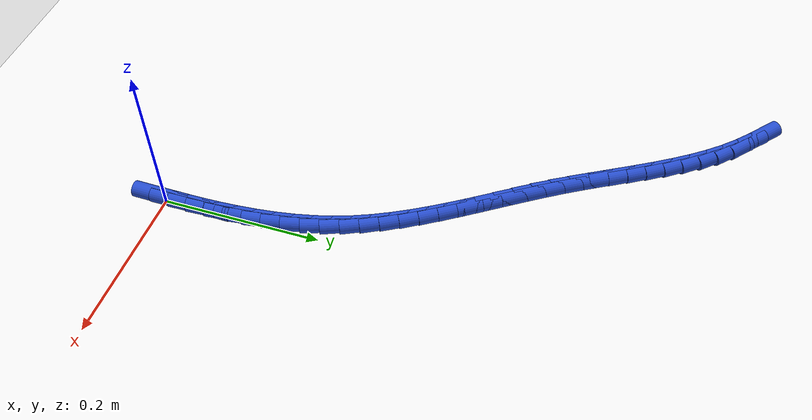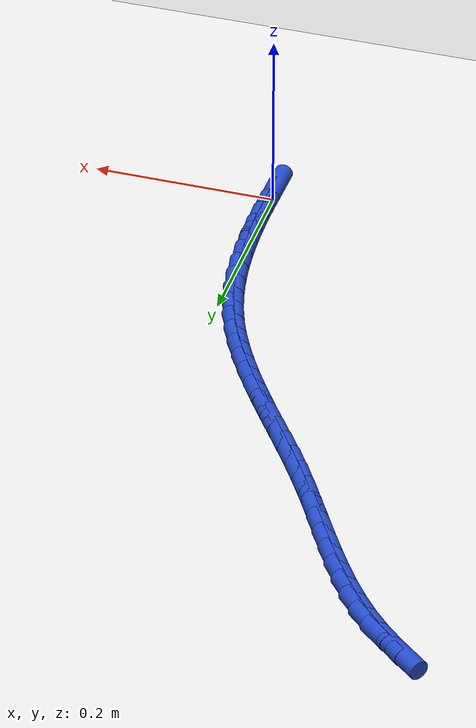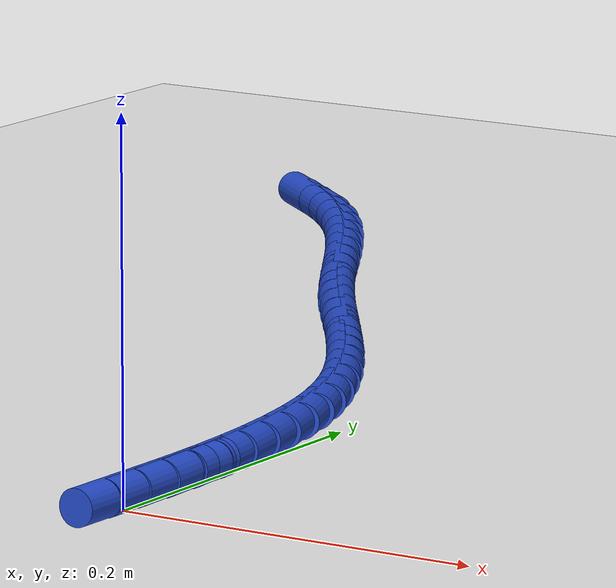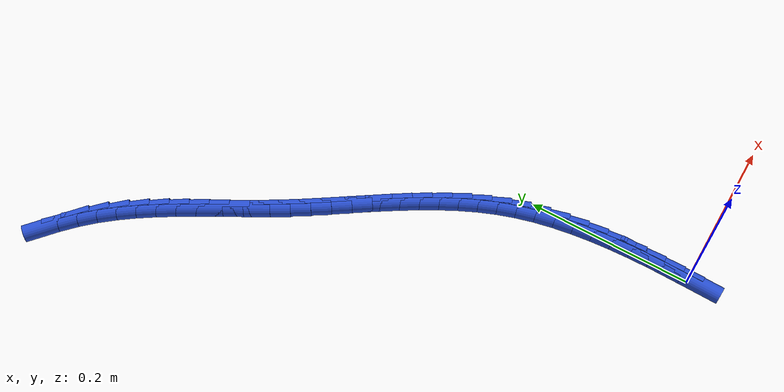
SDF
<sdf version="1.6">
 <world name="default">
  <model name="ground_plane">
   <static>1</static>
   <link name="link">
    <collision name="collision">
     <geometry><plane><normal>0 0 1</normal><size>100 100</size></plane></geometry>
     <surface><friction><ode><mu>100</mu><mu2>50</mu2></ode></friction></surface>
    </collision>
    <visual name="visual">
     <cast_shadows>0</cast_shadows>
     <geometry><plane><normal>0 0 1</normal><size>100 100</size></plane></geometry>
     <material>
      <script><uri>file://media/materials/scripts/gazebo.material</uri><name>Gazebo/WhiteGlow</name></script>
     </material>
    </visual>
   </link>
  </model>
  <model name="line">
   <link name="link_0">
    <pose>-5.637851296924623e-18 7.632783294297951e-17 0.01 0 1.57 1.551759685563351</pose>
    <collision name="collision">
     <geometry><cylinder><radius>0.01</radius><length>0.08</length></cylinder></geometry>
    </collision>
    <visual name="visual">
     <material>
      <script><name>Gazebo/Blue</name><uri>file://media/materials/scripts/gazebo.material</uri></script>
     </material>
     <geometry><cylinder><radius>0.01</radius><length>0.08</length></cylinder></geometry>
    </visual>
   </link>
   <link name="link_1">
    <pose>0.0004580631078288707 0.024059274315162388 0.01 0 1.57 1.57023816781488</pose>
    <collision name="collision">
     <geometry><cylinder><radius>0.01</radius><length>0.08</length></cylinder></geometry>
    </collision>
    <visual name="visual">
     <material>
      <script><name>Gazebo/Blue</name><uri>file://media/materials/scripts/gazebo.material</uri></script>
     </material>
     <geometry><cylinder><radius>0.01</radius><length>0.08</length></cylinder></geometry>
    </visual>
   </link>
   <link name="link_2">
    <pose>0.0004715197326204527 0.04816821796012009 0.01 0 1.57 -1.5480966663146645</pose>
    <collision name="collision">
     <geometry><cylinder><radius>0.01</radius><length>0.08</length></cylinder></geometry>
    </collision>
    <visual name="visual">
     <material>
      <script><name>Gazebo/Blue</name><uri>file://media/materials/scripts/gazebo.material</uri></script>
     </material>
     <geometry><cylinder><radius>0.01</radius><length>0.08</length></cylinder></geometry>
    </visual>
   </link>
   <link name="link_3">
    <pose>-7.52854100205284e-05 0.07225277295274624 0.01 0 1.57 -1.5198641492664755</pose>
    <collision name="collision">
     <geometry><cylinder><radius>0.01</radius><length>0.08</length></cylinder></geometry>
    </collision>
    <visual name="visual">
     <material>
      <script><name>Gazebo/Blue</name><uri>file://media/materials/scripts/gazebo.material</uri></script>
     </material>
     <geometry><cylinder><radius>0.01</radius><length>0.08</length></cylinder></geometry>
    </visual>
   </link>
   <link name="link_4">
    <pose>-0.0012980076044893385 0.09623888131091379 0.01 0 1.57 -1.486411320139112</pose>
    <collision name="collision">
     <geometry><cylinder><radius>0.01</radius><length>0.08</length></cylinder></geometry>
    </collision>
    <visual name="visual">
     <material>
      <script><name>Gazebo/Blue</name><uri>file://media/materials/scripts/gazebo.material</uri></script>
     </material>
     <geometry><cylinder><radius>0.01</radius><length>0.08</length></cylinder></geometry>
    </visual>
   </link>
   <link name="link_5">
    <pose>-0.0033123021351812477 0.12005248505249588 0.01 0 1.57 -1.44745912213653</pose>
    <collision name="collision">
     <geometry><cylinder><radius>0.01</radius><length>0.08</length></cylinder></geometry>
    </collision>
    <visual name="visual">
     <material>
      <script><name>Gazebo/Blue</name><uri>file://media/materials/scripts/gazebo.material</uri></script>
     </material>
     <geometry><cylinder><radius>0.01</radius><length>0.08</length></cylinder></geometry>
    </visual>
   </link>
   <link name="link_6">
    <pose>-0.006233824286491522 0.14361952619536547 0.01 0 1.57 -1.4027191875237015</pose>
    <collision name="collision">
     <geometry><cylinder><radius>0.01</radius><length>0.08</length></cylinder></geometry>
    </collision>
    <visual name="visual">
     <material>
      <script><name>Gazebo/Blue</name><uri>file://media/materials/scripts/gazebo.material</uri></script>
     </material>
     <geometry><cylinder><radius>0.01</radius><length>0.08</length></cylinder></geometry>
    </visual>
   </link>
   <link name="link_7">
    <pose>-0.010178229342815426 0.16686594675739563 0.01 0 1.57 -1.351928127336329</pose>
    <collision name="collision">
     <geometry><cylinder><radius>0.01</radius><length>0.08</length></cylinder></geometry>
    </collision>
    <visual name="visual">
     <material>
      <script><name>Gazebo/Blue</name><uri>file://media/materials/scripts/gazebo.material</uri></script>
     </material>
     <geometry><cylinder><radius>0.01</radius><length>0.08</length></cylinder></geometry>
    </visual>
   </link>
   <link name="link_8">
    <pose>-0.015261172588548234 0.18971768875645942 0.01 0 1.57 -1.2948943079299973</pose>
    <collision name="collision">
     <geometry><cylinder><radius>0.01</radius><length>0.08</length></cylinder></geometry>
    </collision>
    <visual name="visual">
     <material>
      <script><name>Gazebo/Blue</name><uri>file://media/materials/scripts/gazebo.material</uri></script>
     </material>
     <geometry><cylinder><radius>0.01</radius><length>0.08</length></cylinder></geometry>
    </visual>
   </link>
   <link name="link_9">
    <pose>-0.021598309308085203 0.21210069421042982 0.01 0 1.57 -1.2318903393593523</pose>
    <collision name="collision">
     <geometry><cylinder><radius>0.01</radius><length>0.08</length></cylinder></geometry>
    </collision>
    <visual name="visual">
     <material>
      <script><name>Gazebo/Blue</name><uri>file://media/materials/scripts/gazebo.material</uri></script>
     </material>
     <geometry><cylinder><radius>0.01</radius><length>0.08</length></cylinder></geometry>
    </visual>
   </link>
   <link name="link_10">
    <pose>-0.02929842534434294 0.23394459547425706 0.01 0 1.57 -1.1699151971321036</pose>
    <collision name="collision">
     <geometry><cylinder><radius>0.01</radius><length>0.08</length></cylinder></geometry>
    </collision>
    <visual name="visual">
     <material>
      <script><name>Gazebo/Blue</name><uri>file://media/materials/scripts/gazebo.material</uri></script>
     </material>
     <geometry><cylinder><radius>0.01</radius><length>0.08</length></cylinder></geometry>
    </visual>
   </link>
   <link name="link_11">
    <pose>-0.03833016874297059 0.25525430841913777 0.01 0 1.57 -1.115789173306907</pose>
    <collision name="collision">
     <geometry><cylinder><radius>0.01</radius><length>0.08</length></cylinder></geometry>
    </collision>
    <visual name="visual">
     <material>
      <script><name>Gazebo/Blue</name><uri>file://media/materials/scripts/gazebo.material</uri></script>
     </material>
     <geometry><cylinder><radius>0.01</radius><length>0.08</length></cylinder></geometry>
    </visual>
   </link>
   <link name="link_12">
    <pose>-0.04853130731297436 0.2761050591724154 0.01 0 1.57 -1.0700203467706122</pose>
    <collision name="collision">
     <geometry><cylinder><radius>0.01</radius><length>0.08</length></cylinder></geometry>
    </collision>
    <visual name="visual">
     <material>
      <script><name>Gazebo/Blue</name><uri>file://media/materials/scripts/gazebo.material</uri></script>
     </material>
     <geometry><cylinder><radius>0.01</radius><length>0.08</length></cylinder></geometry>
    </visual>
   </link>
   <link name="link_13">
    <pose>-0.059734593645443645 0.2965747680898771 0.01 0 1.57 -1.032631912341022</pose>
    <collision name="collision">
     <geometry><cylinder><radius>0.01</radius><length>0.08</length></cylinder></geometry>
    </collision>
    <visual name="visual">
     <material>
      <script><name>Gazebo/Blue</name><uri>file://media/materials/scripts/gazebo.material</uri></script>
     </material>
     <geometry><cylinder><radius>0.01</radius><length>0.08</length></cylinder></geometry>
    </visual>
   </link>
   <link name="link_14">
    <pose>-0.07177278033146778 0.31674135552731036 0.01 0 1.57 -1.0035009921159832</pose>
    <collision name="collision">
     <geometry><cylinder><radius>0.01</radius><length>0.08</length></cylinder></geometry>
    </collision>
    <visual name="visual">
     <material>
      <script><name>Gazebo/Blue</name><uri>file://media/materials/scripts/gazebo.material</uri></script>
     </material>
     <geometry><cylinder><radius>0.01</radius><length>0.08</length></cylinder></geometry>
    </visual>
   </link>
   <link name="link_15">
    <pose>-0.08447861996213626 0.33668274184050284 0.01 0 1.57 -0.9824379393774216</pose>
    <collision name="collision">
     <geometry><cylinder><radius>0.01</radius><length>0.08</length></cylinder></geometry>
    </collision>
    <visual name="visual">
     <material>
      <script><name>Gazebo/Blue</name><uri>file://media/materials/scripts/gazebo.material</uri></script>
     </material>
     <geometry><cylinder><radius>0.01</radius><length>0.08</length></cylinder></geometry>
    </visual>
   </link>
   <link name="link_16">
    <pose>-0.09768486512853843 0.35647684738524177 0.01 0 1.57 -0.9692446579500995</pose>
    <collision name="collision">
     <geometry><cylinder><radius>0.01</radius><length>0.08</length></cylinder></geometry>
    </collision>
    <visual name="visual">
     <material>
      <script><name>Gazebo/Blue</name><uri>file://media/materials/scripts/gazebo.material</uri></script>
     </material>
     <geometry><cylinder><radius>0.01</radius><length>0.08</length></cylinder></geometry>
    </visual>
   </link>
   <link name="link_17">
    <pose>-0.11122426842176367 0.3762015925173147 0.01 0 1.57 -0.9637529402914834</pose>
    <collision name="collision">
     <geometry><cylinder><radius>0.01</radius><length>0.08</length></cylinder></geometry>
    </collision>
    <visual name="visual">
     <material>
      <script><name>Gazebo/Blue</name><uri>file://media/materials/scripts/gazebo.material</uri></script>
     </material>
     <geometry><cylinder><radius>0.01</radius><length>0.08</length></cylinder></geometry>
    </visual>
   </link>
   <link name="link_18">
    <pose>-0.12492958243290138 0.39593489759250905 0.01 0 1.57 -0.9658458031742991</pose>
    <collision name="collision">
     <geometry><cylinder><radius>0.01</radius><length>0.08</length></cylinder></geometry>
    </collision>
    <visual name="visual">
     <material>
      <script><name>Gazebo/Blue</name><uri>file://media/materials/scripts/gazebo.material</uri></script>
     </material>
     <geometry><cylinder><radius>0.01</radius><length>0.08</length></cylinder></geometry>
    </visual>
   </link>
   <link name="link_19">
    <pose>-0.13863355975304098 0.41575468296661233 0.01 0 1.57 -0.9754646992174958</pose>
    <collision name="collision">
     <geometry><cylinder><radius>0.01</radius><length>0.08</length></cylinder></geometry>
    </collision>
    <visual name="visual">
     <material>
      <script><name>Gazebo/Blue</name><uri>file://media/materials/scripts/gazebo.material</uri></script>
     </material>
     <geometry><cylinder><radius>0.01</radius><length>0.08</length></cylinder></geometry>
    </visual>
   </link>
   <link name="link_20">
    <pose>-0.1521689529732719 0.43573886899541203 0.01 0 1.57 -0.9926044126425159</pose>
    <collision name="collision">
     <geometry><cylinder><radius>0.01</radius><length>0.08</length></cylinder></geometry>
    </collision>
    <visual name="visual">
     <material>
      <script><name>Gazebo/Blue</name><uri>file://media/materials/scripts/gazebo.material</uri></script>
     </material>
     <geometry><cylinder><radius>0.01</radius><length>0.08</length></cylinder></geometry>
    </visual>
   </link>
   <link name="link_21">
    <pose>-0.16536851468468344 0.45596537603469545 0.01 0 1.57 -1.0155542861446123</pose>
    <collision name="collision">
     <geometry><cylinder><radius>0.01</radius><length>0.08</length></cylinder></geometry>
    </collision>
    <visual name="visual">
     <material>
      <script><name>Gazebo/Blue</name><uri>file://media/materials/scripts/gazebo.material</uri></script>
     </material>
     <geometry><cylinder><radius>0.01</radius><length>0.08</length></cylinder></geometry>
    </visual>
   </link>
   <link name="link_22">
    <pose>-0.17810003155705945 0.4764887911924175 0.01 0 1.57 -1.0330435236181261</pose>
    <collision name="collision">
     <geometry><cylinder><radius>0.01</radius><length>0.08</length></cylinder></geometry>
    </collision>
    <visual name="visual">
     <material>
      <script><name>Gazebo/Blue</name><uri>file://media/materials/scripts/gazebo.material</uri></script>
     </material>
     <geometry><cylinder><radius>0.01</radius><length>0.08</length></cylinder></geometry>
    </visual>
   </link>
   <link name="link_23">
    <pose>-0.1904589610098408 0.497212069273815 0.01 0 1.57 -1.0405841910014644</pose>
    <collision name="collision">
     <geometry><cylinder><radius>0.01</radius><length>0.08</length></cylinder></geometry>
    </collision>
    <visual name="visual">
     <material>
      <script><name>Gazebo/Blue</name><uri>file://media/materials/scripts/gazebo.material</uri></script>
     </material>
     <geometry><cylinder><radius>0.01</radius><length>0.08</length></cylinder></geometry>
    </visual>
   </link>
   <link name="link_24">
    <pose>-0.20263174001428746 0.5179775712706328 0.01 0 1.57 -1.038127003793174</pose>
    <collision name="collision">
     <geometry><cylinder><radius>0.01</radius><length>0.08</length></cylinder></geometry>
    </collision>
    <visual name="visual">
     <material>
      <script><name>Gazebo/Blue</name><uri>file://media/materials/scripts/gazebo.material</uri></script>
     </material>
     <geometry><cylinder><radius>0.01</radius><length>0.08</length></cylinder></geometry>
    </visual>
   </link>
   <link name="link_25">
    <pose>-0.21480504454830684 0.5386274989924257 0.01 0 1.57 -1.0255348692210922</pose>
    <collision name="collision">
     <geometry><cylinder><radius>0.01</radius><length>0.08</length></cylinder></geometry>
    </collision>
    <visual name="visual">
     <material>
      <script><name>Gazebo/Blue</name><uri>file://media/materials/scripts/gazebo.material</uri></script>
     </material>
     <geometry><cylinder><radius>0.01</radius><length>0.08</length></cylinder></geometry>
    </visual>
   </link>
   <link name="link_26">
    <pose>-0.22716555058980648 0.5590040542487485 0.01 0 1.57 -1.0025745106542154</pose>
    <collision name="collision">
     <geometry><cylinder><radius>0.01</radius><length>0.08</length></cylinder></geometry>
    </collision>
    <visual name="visual">
     <material>
      <script><name>Gazebo/Blue</name><uri>file://media/materials/scripts/gazebo.material</uri></script>
     </material>
     <geometry><cylinder><radius>0.01</radius><length>0.08</length></cylinder></geometry>
    </visual>
   </link>
   <link name="link_27">
    <pose>-0.23989993411669386 0.5789494388491567 0.01 0 1.57 -0.9689510966440771</pose>
    <collision name="collision">
     <geometry><cylinder><radius>0.01</radius><length>0.08</length></cylinder></geometry>
    </collision>
    <visual name="visual">
     <material>
      <script><name>Gazebo/Blue</name><uri>file://media/materials/scripts/gazebo.material</uri></script>
     </material>
     <geometry><cylinder><radius>0.01</radius><length>0.08</length></cylinder></geometry>
    </visual>
   </link>
   <link name="link_28">
    <pose>-0.25319487110687655 0.5983058546032053 0.01 0 1.57 -0.9243808068357932</pose>
    <collision name="collision">
     <geometry><cylinder><radius>0.01</radius><length>0.08</length></cylinder></geometry>
    </collision>
    <visual name="visual">
     <material>
      <script><name>Gazebo/Blue</name><uri>file://media/materials/scripts/gazebo.material</uri></script>
     </material>
     <geometry><cylinder><radius>0.01</radius><length>0.08</length></cylinder></geometry>
    </visual>
   </link>
   <link name="link_29">
    <pose>-0.2672370375382621 0.6169155033204493 0.01 0 1.57 -0.8687090175828311</pose>
    <collision name="collision">
     <geometry><cylinder><radius>0.01</radius><length>0.08</length></cylinder></geometry>
    </collision>
    <visual name="visual">
     <material>
      <script><name>Gazebo/Blue</name><uri>file://media/materials/scripts/gazebo.material</uri></script>
     </material>
     <geometry><cylinder><radius>0.01</radius><length>0.08</length></cylinder></geometry>
    </visual>
   </link>
   <link name="link_30">
    <pose>-0.28221310938875804 0.6346205868104438 0.01 0 1.57 -0.8021210492284885</pose>
    <collision name="collision">
     <geometry><cylinder><radius>0.01</radius><length>0.08</length></cylinder></geometry>
    </collision>
    <visual name="visual">
     <material>
      <script><name>Gazebo/Blue</name><uri>file://media/materials/scripts/gazebo.material</uri></script>
     </material>
     <geometry><cylinder><radius>0.01</radius><length>0.08</length></cylinder></geometry>
    </visual>
   </link>
   <link name="link_31">
    <pose>-0.2983090102558215 0.6512640351183377 0.01 0 1.57 -0.7336708256044858</pose>
    <collision name="collision">
     <geometry><cylinder><radius>0.01</radius><length>0.08</length></cylinder></geometry>
    </collision>
    <visual name="visual">
     <material>
      <script><name>Gazebo/Blue</name><uri>file://media/materials/scripts/gazebo.material</uri></script>
     </material>
     <geometry><cylinder><radius>0.01</radius><length>0.08</length></cylinder></geometry>
    </visual>
   </link>
   <link name="link_32">
    <pose>-0.31556959698871756 0.666825318024033 0.01 0 1.57 -0.6822053867130713</pose>
    <collision name="collision">
     <geometry><cylinder><radius>0.01</radius><length>0.08</length></cylinder></geometry>
    </collision>
    <visual name="visual">
     <material>
      <script><name>Gazebo/Blue</name><uri>file://media/materials/scripts/gazebo.material</uri></script>
     </material>
     <geometry><cylinder><radius>0.01</radius><length>0.08</length></cylinder></geometry>
    </visual>
   </link>
   <link name="link_281">
    <pose>0.0004823130749641875 0.024072334251259434 0.01 0 1.57 1.5632260728506429</pose>
    <collision name="collision">
     <geometry><cylinder><radius>0.01</radius><length>0.08</length></cylinder></geometry>
    </collision>
    <visual name="visual">
     <material>
      <script><name>Gazebo/Blue</name><uri>file://media/materials/scripts/gazebo.material</uri></script>
     </material>
     <geometry><cylinder><radius>0.01</radius><length>0.08</length></cylinder></geometry>
    </visual>
   </link>
   <link name="link_282">
    <pose>0.0006655194697030332 0.04827269744889849 0.01 0 1.57 1.5570105359831787</pose>
    <collision name="collision">
     <geometry><cylinder><radius>0.01</radius><length>0.08</length></cylinder></geometry>
    </collision>
    <visual name="visual">
     <material>
      <script><name>Gazebo/Blue</name><uri>file://media/materials/scripts/gazebo.material</uri></script>
     </material>
     <geometry><cylinder><radius>0.01</radius><length>0.08</length></cylinder></geometry>
    </visual>
   </link>
  </model>
 </world>
</sdf>
